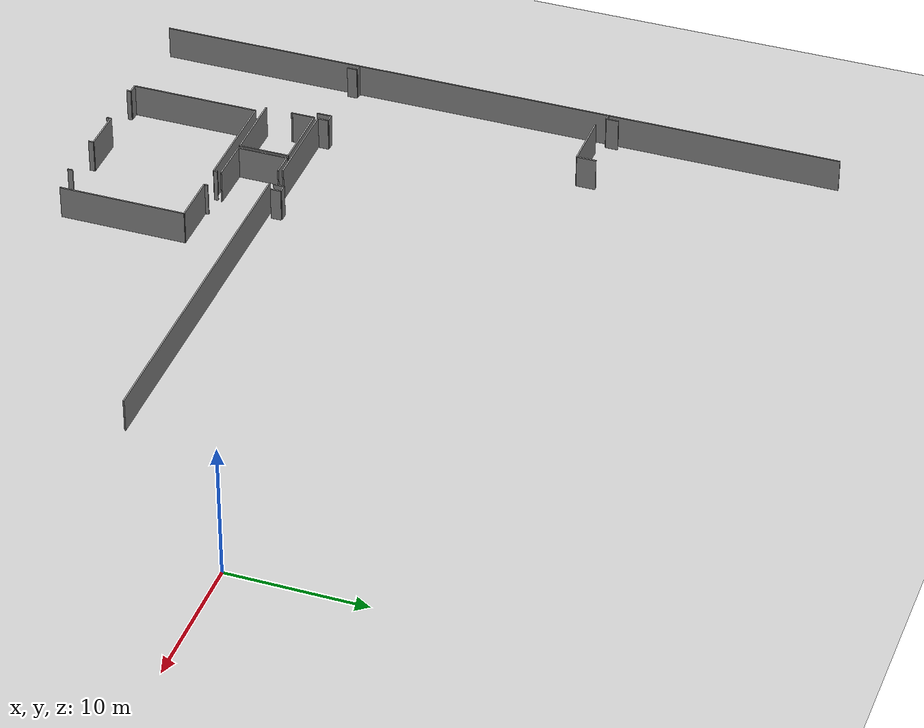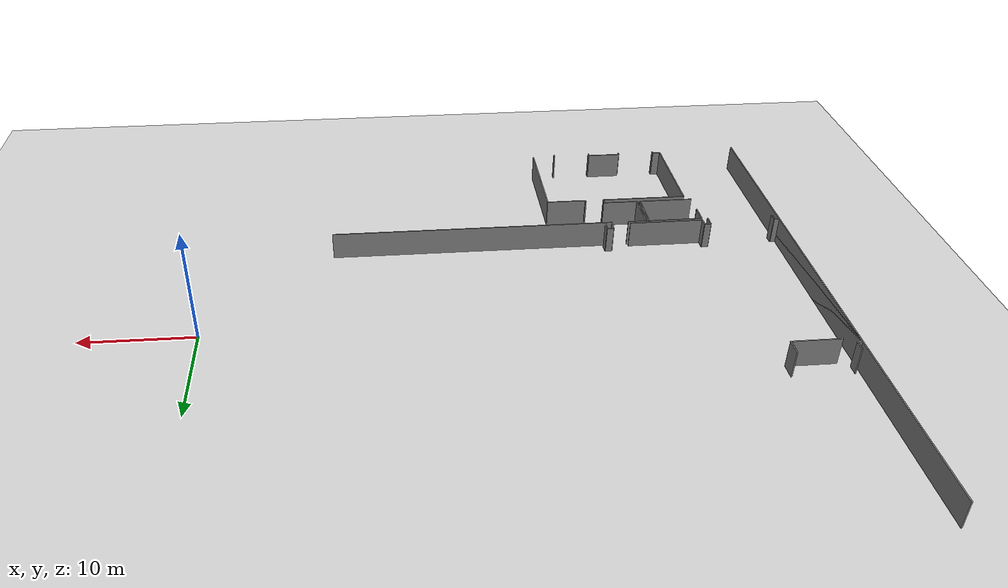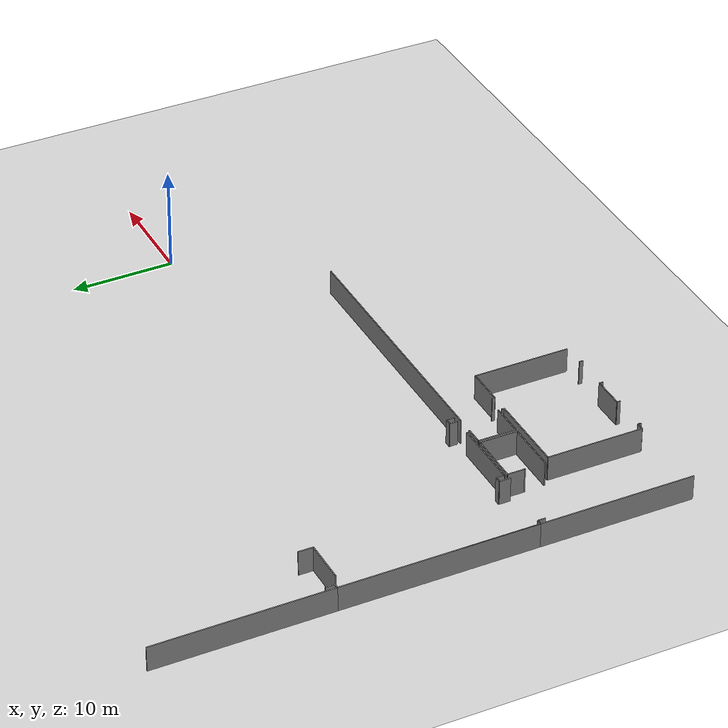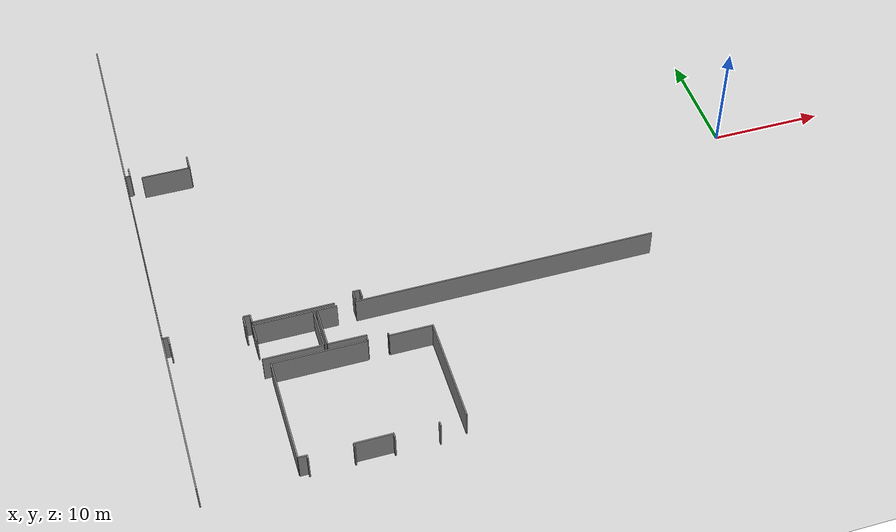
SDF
<sdf version="1.6">
 <world name="default">
  <model name="ground_plane">
   <static>1</static>
   <link name="link">
    <collision name="collision">
     <geometry><plane><normal>0 0 1</normal><size>100 100</size></plane></geometry>
     <surface><friction><ode><mu>100</mu><mu2>50</mu2></ode></friction></surface>
    </collision>
    <visual name="visual">
     <cast_shadows>0</cast_shadows>
     <geometry><plane><normal>0 0 1</normal><size>100 100</size></plane></geometry>
     <material>
      <script><uri>file://media/materials/scripts/gazebo.material</uri><name>Gazebo/Grey</name></script>
     </material>
    </visual>
   </link>
  </model>
  <model name="50045367">
   <static>1</static>
   <link name="Wall_85">
    <collision name="Wall_85_Collision">
     <geometry><box><size>19.0715991666 0.1 2.5</size></box></geometry>
     <pose>9.53579958331 0 1.25 0 0 0</pose>
    </collision>
    <visual name="Wall_85_Visual">
     <pose>9.53579958331 0 1.25 0 0 0</pose>
     <geometry><box><size>19.0715991666 0.1 2.5</size></box></geometry>
     <material>
      <script><uri>file://media/materials/scripts/gazebo.material</uri><name>Gazebo/Grey</name></script>
      <ambient>1 1 1 1</ambient>
     </material>
    </visual>
    <pose>0.0 -36.2678489761 0 0 0 1.57079632679</pose>
   </link>
   <link name="Wall_86">
    <collision name="Wall_86_Collision">
     <geometry><box><size>0.442095634941 0.1 2.5</size></box></geometry>
     <pose>0.22104781747 0 1.25 0 0 0</pose>
    </collision>
    <visual name="Wall_86_Visual">
     <pose>0.22104781747 0 1.25 0 0 0</pose>
     <geometry><box><size>0.442095634941 0.1 2.5</size></box></geometry>
     <material>
      <script><uri>file://media/materials/scripts/gazebo.material</uri><name>Gazebo/Grey</name></script>
      <ambient>1 1 1 1</ambient>
     </material>
    </visual>
    <pose>0.0 -17.1962498094 0 0 0 0.0</pose>
   </link>
   <link name="Wall_87">
    <collision name="Wall_87_Collision">
     <geometry><box><size>0.907947558311 0.1 2.5</size></box></geometry>
     <pose>0.453973779155 0 1.25 0 0 0</pose>
    </collision>
    <visual name="Wall_87_Visual">
     <pose>0.453973779155 0 1.25 0 0 0</pose>
     <geometry><box><size>0.907947558311 0.1 2.5</size></box></geometry>
     <material>
      <script><uri>file://media/materials/scripts/gazebo.material</uri><name>Gazebo/Grey</name></script>
      <ambient>1 1 1 1</ambient>
     </material>
    </visual>
    <pose>0.442095634941 -17.1962498094 0 0 0 1.57079632679</pose>
   </link>
   <link name="Wall_90">
    <collision name="Wall_90_Collision">
     <geometry><box><size>4.26546064333 0.1 2.5</size></box></geometry>
     <pose>2.13273032166 0 1.25 0 0 0</pose>
    </collision>
    <visual name="Wall_90_Visual">
     <pose>2.13273032166 0 1.25 0 0 0</pose>
     <geometry><box><size>4.26546064333 0.1 2.5</size></box></geometry>
     <material>
      <script><uri>file://media/materials/scripts/gazebo.material</uri><name>Gazebo/Grey</name></script>
      <ambient>1 1 1 1</ambient>
     </material>
    </visual>
    <pose>1.40085878347 -17.7152040246 0 0 0 0.0</pose>
   </link>
   <link name="Wall_91">
    <collision name="Wall_91_Collision">
     <geometry><box><size>1.43363483917 0.1 2.5</size></box></geometry>
     <pose>0.716817419584 0 1.25 0 0 0</pose>
    </collision>
    <visual name="Wall_91_Visual">
     <pose>0.716817419584 0 1.25 0 0 0</pose>
     <geometry><box><size>1.43363483917 0.1 2.5</size></box></geometry>
     <material>
      <script><uri>file://media/materials/scripts/gazebo.material</uri><name>Gazebo/Grey</name></script>
      <ambient>1 1 1 1</ambient>
     </material>
    </visual>
    <pose>5.6663194268 -17.7152040246 0 0 0 1.57079632679</pose>
   </link>
   <link name="Wall_117">
    <collision name="Wall_117_Collision">
     <geometry><box><size>0.776462218609 0.1 2.5</size></box></geometry>
     <pose>0.388231109304 0 1.25 0 0 0</pose>
    </collision>
    <visual name="Wall_117_Visual">
     <pose>0.388231109304 0 1.25 0 0 0</pose>
     <geometry><box><size>0.776462218609 0.1 2.5</size></box></geometry>
     <material>
      <script><uri>file://media/materials/scripts/gazebo.material</uri><name>Gazebo/Grey</name></script>
      <ambient>1 1 1 1</ambient>
     </material>
    </visual>
    <pose>16.559276386 -36.7162965598 0 0 0 1.57079632679</pose>
   </link>
   <link name="Wall_118">
    <collision name="Wall_118_Collision">
     <geometry><box><size>0.603181055948 0.1 2.5</size></box></geometry>
     <pose>0.301590527974 0 1.25 0 0 0</pose>
    </collision>
    <visual name="Wall_118_Visual">
     <pose>0.301590527974 0 1.25 0 0 0</pose>
     <geometry><box><size>0.603181055948 0.1 2.5</size></box></geometry>
     <material>
      <script><uri>file://media/materials/scripts/gazebo.material</uri><name>Gazebo/Grey</name></script>
      <ambient>1 1 1 1</ambient>
     </material>
    </visual>
    <pose>16.559276386 -35.9398343412 0 0 0 3.14159265359</pose>
   </link>
   <link name="Wall_119">
    <collision name="Wall_119_Collision">
     <geometry><box><size>0.770872503684 0.1 2.5</size></box></geometry>
     <pose>0.385436251842 0 1.25 0 0 0</pose>
    </collision>
    <visual name="Wall_119_Visual">
     <pose>0.385436251842 0 1.25 0 0 0</pose>
     <geometry><box><size>0.770872503684 0.1 2.5</size></box></geometry>
     <material>
      <script><uri>file://media/materials/scripts/gazebo.material</uri><name>Gazebo/Grey</name></script>
      <ambient>1 1 1 1</ambient>
     </material>
    </visual>
    <pose>15.95609533 -35.9398343412 0 0 0 -1.57079632679</pose>
   </link>
   <link name="Wall_120">
    <collision name="Wall_120_Collision">
     <geometry><box><size>6.8846232024 0.1 2.5</size></box></geometry>
     <pose>3.4423116012 0 1.25 0 0 0</pose>
    </collision>
    <visual name="Wall_120_Visual">
     <pose>3.4423116012 0 1.25 0 0 0</pose>
     <geometry><box><size>6.8846232024 0.1 2.5</size></box></geometry>
     <material>
      <script><uri>file://media/materials/scripts/gazebo.material</uri><name>Gazebo/Grey</name></script>
      <ambient>1 1 1 1</ambient>
     </material>
    </visual>
    <pose>14.1907617257 -36.7107068449 0 0 0 3.14159265359</pose>
   </link>
   <link name="Wall_121">
    <collision name="Wall_121_Collision">
     <geometry><box><size>0.789166116164 0.1 2.5</size></box></geometry>
     <pose>0.394583058082 0 1.25 0 0 0</pose>
    </collision>
    <visual name="Wall_121_Visual">
     <pose>0.394583058082 0 1.25 0 0 0</pose>
     <geometry><box><size>0.789166116164 0.1 2.5</size></box></geometry>
     <material>
      <script><uri>file://media/materials/scripts/gazebo.material</uri><name>Gazebo/Grey</name></script>
      <ambient>1 1 1 1</ambient>
     </material>
    </visual>
    <pose>7.3061385233 -36.7107068449 0 0 0 1.57079632679</pose>
   </link>
   <link name="Wall_122">
    <collision name="Wall_122_Collision">
     <geometry><box><size>0.588444534783 0.1 2.5</size></box></geometry>
     <pose>0.294222267392 0 1.25 0 0 0</pose>
    </collision>
    <visual name="Wall_122_Visual">
     <pose>0.294222267392 0 1.25 0 0 0</pose>
     <geometry><box><size>0.588444534783 0.1 2.5</size></box></geometry>
     <material>
      <script><uri>file://media/materials/scripts/gazebo.material</uri><name>Gazebo/Grey</name></script>
      <ambient>1 1 1 1</ambient>
     </material>
    </visual>
    <pose>7.3061385233 -35.9215407287 0 0 0 3.14159265359</pose>
   </link>
   <link name="Wall_123">
    <collision name="Wall_123_Collision">
     <geometry><box><size>1.08961329336 0.1 2.5</size></box></geometry>
     <pose>0.544806646679 0 1.25 0 0 0</pose>
    </collision>
    <visual name="Wall_123_Visual">
     <pose>0.544806646679 0 1.25 0 0 0</pose>
     <geometry><box><size>1.08961329336 0.1 2.5</size></box></geometry>
     <material>
      <script><uri>file://media/materials/scripts/gazebo.material</uri><name>Gazebo/Grey</name></script>
      <ambient>1 1 1 1</ambient>
     </material>
    </visual>
    <pose>6.71769398852 -35.9215407287 0 0 0 -1.57079632679</pose>
   </link>
   <link name="Wall_124">
    <collision name="Wall_124_Collision">
     <geometry><box><size>0.737842370039 0.1 2.5</size></box></geometry>
     <pose>0.36892118502 0 1.25 0 0 0</pose>
    </collision>
    <visual name="Wall_124_Visual">
     <pose>0.36892118502 0 1.25 0 0 0</pose>
     <geometry><box><size>0.737842370039 0.1 2.5</size></box></geometry>
     <material>
      <script><uri>file://media/materials/scripts/gazebo.material</uri><name>Gazebo/Grey</name></script>
      <ambient>1 1 1 1</ambient>
     </material>
    </visual>
    <pose>0.503582499111 -37.0111540221 0 0 0 1.57079632679</pose>
   </link>
   <link name="Wall_125">
    <collision name="Wall_125_Collision">
     <geometry><box><size>0.503612126779 0.1 2.5</size></box></geometry>
     <pose>0.25180606339 0 1.25 0 0 0</pose>
    </collision>
    <visual name="Wall_125_Visual">
     <pose>0.25180606339 0 1.25 0 0 0</pose>
     <geometry><box><size>0.503612126779 0.1 2.5</size></box></geometry>
     <material>
      <script><uri>file://media/materials/scripts/gazebo.material</uri><name>Gazebo/Grey</name></script>
      <ambient>1 1 1 1</ambient>
     </material>
    </visual>
    <pose>0.503582499111 -36.273311652 0 0 0 3.13074545039</pose>
   </link>
   <link name="Wall_135">
    <collision name="Wall_135_Collision">
     <geometry><box><size>1.62952893948 0.1 2.5</size></box></geometry>
     <pose>0.814764469739 0 1.25 0 0 0</pose>
    </collision>
    <visual name="Wall_135_Visual">
     <pose>0.814764469739 0 1.25 0 0 0</pose>
     <geometry><box><size>1.62952893948 0.1 2.5</size></box></geometry>
     <material>
      <script><uri>file://media/materials/scripts/gazebo.material</uri><name>Gazebo/Grey</name></script>
      <ambient>1 1 1 1</ambient>
     </material>
    </visual>
    <pose>7.28682859901 -38.643477819 0 0 0 1.57079632679</pose>
   </link>
   <link name="Wall_136">
    <collision name="Wall_136_Collision">
     <geometry><box><size>5.07025255348 0.1 2.5</size></box></geometry>
     <pose>2.53512627674 0 1.25 0 0 0</pose>
    </collision>
    <visual name="Wall_136_Visual">
     <pose>2.53512627674 0 1.25 0 0 0</pose>
     <geometry><box><size>5.07025255348 0.1 2.5</size></box></geometry>
     <material>
      <script><uri>file://media/materials/scripts/gazebo.material</uri><name>Gazebo/Grey</name></script>
      <ambient>1 1 1 1</ambient>
     </material>
    </visual>
    <pose>7.28682859901 -37.0139488795 0 0 0 0.0</pose>
   </link>
   <link name="Wall_137">
    <collision name="Wall_137_Collision">
     <geometry><box><size>3.690228162 0.1 2.5</size></box></geometry>
     <pose>1.845114081 0 1.25 0 0 0</pose>
    </collision>
    <visual name="Wall_137_Visual">
     <pose>1.845114081 0 1.25 0 0 0</pose>
     <geometry><box><size>3.690228162 0.1 2.5</size></box></geometry>
     <material>
      <script><uri>file://media/materials/scripts/gazebo.material</uri><name>Gazebo/Grey</name></script>
      <ambient>1 1 1 1</ambient>
     </material>
    </visual>
    <pose>12.3570811525 -37.0139488795 0 0 0 -1.57079632679</pose>
   </link>
   <link name="Wall_138">
    <collision name="Wall_138_Collision">
     <geometry><box><size>5.0800345546 0.1 2.5</size></box></geometry>
     <pose>2.5400172773 0 1.25 0 0 0</pose>
    </collision>
    <visual name="Wall_138_Visual">
     <pose>2.5400172773 0 1.25 0 0 0</pose>
     <geometry><box><size>5.0800345546 0.1 2.5</size></box></geometry>
     <material>
      <script><uri>file://media/materials/scripts/gazebo.material</uri><name>Gazebo/Grey</name></script>
      <ambient>1 1 1 1</ambient>
     </material>
    </visual>
    <pose>12.3570811525 -40.7041770415 0 0 0 3.14159265359</pose>
   </link>
   <link name="Wall_139">
    <collision name="Wall_139_Collision">
     <geometry><box><size>0.10969056001 0.1 2.5</size></box></geometry>
     <pose>0.054845280005 0 1.25 0 0 0</pose>
    </collision>
    <visual name="Wall_139_Visual">
     <pose>0.054845280005 0 1.25 0 0 0</pose>
     <geometry><box><size>0.10969056001 0.1 2.5</size></box></geometry>
     <material>
      <script><uri>file://media/materials/scripts/gazebo.material</uri><name>Gazebo/Grey</name></script>
      <ambient>1 1 1 1</ambient>
     </material>
    </visual>
    <pose>7.2770465979 -38.752731338 0 0 0 1.48149955084</pose>
   </link>
   <link name="Wall_301">
    <collision name="Wall_301_Collision">
     <geometry><box><size>9.40024899639 0.1 2.5</size></box></geometry>
     <pose>4.7001244982 0 1.25 0 0 0</pose>
    </collision>
    <visual name="Wall_301_Visual">
     <pose>4.7001244982 0 1.25 0 0 0</pose>
     <geometry><box><size>9.40024899639 0.1 2.5</size></box></geometry>
     <material>
      <script><uri>file://media/materials/scripts/gazebo.material</uri><name>Gazebo/Grey</name></script>
      <ambient>1 1 1 1</ambient>
     </material>
    </visual>
    <pose>7.86714263936 -50.6943950404 0 0 0 1.57079632679</pose>
   </link>
   <link name="Wall_302">
    <collision name="Wall_302_Collision">
     <geometry><box><size>7.96343818283 0.1 2.5</size></box></geometry>
     <pose>3.98171909142 0 1.25 0 0 0</pose>
    </collision>
    <visual name="Wall_302_Visual">
     <pose>3.98171909142 0 1.25 0 0 0</pose>
     <geometry><box><size>7.96343818283 0.1 2.5</size></box></geometry>
     <material>
      <script><uri>file://media/materials/scripts/gazebo.material</uri><name>Gazebo/Grey</name></script>
      <ambient>1 1 1 1</ambient>
     </material>
    </visual>
    <pose>7.86714263936 -41.294146044 0 0 0 0.0</pose>
   </link>
   <link name="Wall_303">
    <collision name="Wall_303_Collision">
     <geometry><box><size>0.277072005691 0.1 2.5</size></box></geometry>
     <pose>0.138536002846 0 1.25 0 0 0</pose>
    </collision>
    <visual name="Wall_303_Visual">
     <pose>0.138536002846 0 1.25 0 0 0</pose>
     <geometry><box><size>0.277072005691 0.1 2.5</size></box></geometry>
     <material>
      <script><uri>file://media/materials/scripts/gazebo.material</uri><name>Gazebo/Grey</name></script>
      <ambient>1 1 1 1</ambient>
     </material>
    </visual>
    <pose>15.8305808222 -41.294146044 0 0 0 1.57079632679</pose>
   </link>
   <link name="Wall_304">
    <collision name="Wall_304_Collision">
     <geometry><box><size>0.278596473398 0.1 2.5</size></box></geometry>
     <pose>0.139298236699 0 1.25 0 0 0</pose>
    </collision>
    <visual name="Wall_304_Visual">
     <pose>0.139298236699 0 1.25 0 0 0</pose>
     <geometry><box><size>0.278596473398 0.1 2.5</size></box></geometry>
     <material>
      <script><uri>file://media/materials/scripts/gazebo.material</uri><name>Gazebo/Grey</name></script>
      <ambient>1 1 1 1</ambient>
     </material>
    </visual>
    <pose>17.6076020123 -41.0170740383 0 0 0 -1.57079632679</pose>
   </link>
   <link name="Wall_305">
    <collision name="Wall_305_Collision">
     <geometry><box><size>3.69962904619 0.1 2.5</size></box></geometry>
     <pose>1.8498145231 0 1.25 0 0 0</pose>
    </collision>
    <visual name="Wall_305_Visual">
     <pose>1.8498145231 0 1.25 0 0 0</pose>
     <geometry><box><size>3.69962904619 0.1 2.5</size></box></geometry>
     <material>
      <script><uri>file://media/materials/scripts/gazebo.material</uri><name>Gazebo/Grey</name></script>
      <ambient>1 1 1 1</ambient>
     </material>
    </visual>
    <pose>17.6076020123 -41.2956705117 0 0 0 0.0</pose>
   </link>
   <link name="Wall_306">
    <collision name="Wall_306_Collision">
     <geometry><box><size>9.39046699527 0.1 2.5</size></box></geometry>
     <pose>4.69523349764 0 1.25 0 0 0</pose>
    </collision>
    <visual name="Wall_306_Visual">
     <pose>4.69523349764 0 1.25 0 0 0</pose>
     <geometry><box><size>9.39046699527 0.1 2.5</size></box></geometry>
     <material>
      <script><uri>file://media/materials/scripts/gazebo.material</uri><name>Gazebo/Grey</name></script>
      <ambient>1 1 1 1</ambient>
     </material>
    </visual>
    <pose>21.3072310585 -41.2956705117 0 0 0 -1.57079632679</pose>
   </link>
   <link name="Wall_308">
    <collision name="Wall_308_Collision">
     <geometry><box><size>0.3757812897 0.1 2.5</size></box></geometry>
     <pose>0.18789064485 0 1.25 0 0 0</pose>
    </collision>
    <visual name="Wall_308_Visual">
     <pose>0.18789064485 0 1.25 0 0 0</pose>
     <geometry><box><size>0.3757812897 0.1 2.5</size></box></geometry>
     <material>
      <script><uri>file://media/materials/scripts/gazebo.material</uri><name>Gazebo/Grey</name></script>
      <ambient>1 1 1 1</ambient>
     </material>
    </visual>
    <pose>19.085319376 -50.686137507 0 0 0 -1.57079632679</pose>
   </link>
   <link name="Wall_309">
    <collision name="Wall_309_Collision">
     <geometry><box><size>0.376670562529 0.1 2.5</size></box></geometry>
     <pose>0.188335281264 0 1.25 0 0 0</pose>
    </collision>
    <visual name="Wall_309_Visual">
     <pose>0.188335281264 0 1.25 0 0 0</pose>
     <geometry><box><size>0.376670562529 0.1 2.5</size></box></geometry>
     <material>
      <script><uri>file://media/materials/scripts/gazebo.material</uri><name>Gazebo/Grey</name></script>
      <ambient>1 1 1 1</ambient>
     </material>
    </visual>
    <pose>15.4292646984 -51.0619187967 0 0 0 1.57079632679</pose>
   </link>
   <link name="Wall_310">
    <collision name="Wall_310_Collision">
     <geometry><box><size>3.16873316734 0.1 2.5</size></box></geometry>
     <pose>1.58436658367 0 1.25 0 0 0</pose>
    </collision>
    <visual name="Wall_310_Visual">
     <pose>1.58436658367 0 1.25 0 0 0</pose>
     <geometry><box><size>3.16873316734 0.1 2.5</size></box></geometry>
     <material>
      <script><uri>file://media/materials/scripts/gazebo.material</uri><name>Gazebo/Grey</name></script>
      <ambient>1 1 1 1</ambient>
     </material>
    </visual>
    <pose>15.4292646984 -50.6852482342 0 0 0 3.14159265359</pose>
   </link>
   <link name="Wall_311">
    <collision name="Wall_311_Collision">
     <geometry><box><size>0.332333960059 0.1 2.5</size></box></geometry>
     <pose>0.166166980029 0 1.25 0 0 0</pose>
    </collision>
    <visual name="Wall_311_Visual">
     <pose>0.166166980029 0 1.25 0 0 0</pose>
     <geometry><box><size>0.332333960059 0.1 2.5</size></box></geometry>
     <material>
      <script><uri>file://media/materials/scripts/gazebo.material</uri><name>Gazebo/Grey</name></script>
      <ambient>1 1 1 1</ambient>
     </material>
    </visual>
    <pose>12.2605315311 -50.6852482342 0 0 0 -1.57079632679</pose>
   </link>
   <link name="Wall_312">
    <collision name="Wall_312_Collision">
     <geometry><box><size>0.312515879872 0.1 2.5</size></box></geometry>
     <pose>0.156257939936 0 1.25 0 0 0</pose>
    </collision>
    <visual name="Wall_312_Visual">
     <pose>0.156257939936 0 1.25 0 0 0</pose>
     <geometry><box><size>0.312515879872 0.1 2.5</size></box></geometry>
     <material>
      <script><uri>file://media/materials/scripts/gazebo.material</uri><name>Gazebo/Grey</name></script>
      <ambient>1 1 1 1</ambient>
     </material>
    </visual>
    <pose>8.59914121653 -51.0175821942 0 0 0 1.57079632679</pose>
   </link>
   <link name="Wall_313">
    <collision name="Wall_313_Collision">
     <geometry><box><size>0.732076357395 0.1 2.5</size></box></geometry>
     <pose>0.366038178698 0 1.25 0 0 0</pose>
    </collision>
    <visual name="Wall_313_Visual">
     <pose>0.366038178698 0 1.25 0 0 0</pose>
     <geometry><box><size>0.732076357395 0.1 2.5</size></box></geometry>
     <material>
      <script><uri>file://media/materials/scripts/gazebo.material</uri><name>Gazebo/Grey</name></script>
      <ambient>1 1 1 1</ambient>
     </material>
    </visual>
    <pose>8.59914121653 -50.7050663143 0 0 0 3.12701541478</pose>
   </link>
   <link name="Wall_466">
    <collision name="Wall_466_Collision">
     <geometry><box><size>3.68120839474 0.1 2.5</size></box></geometry>
     <pose>1.84060419737 0 1.25 0 0 0</pose>
    </collision>
    <visual name="Wall_466_Visual">
     <pose>1.84060419737 0 1.25 0 0 0</pose>
     <geometry><box><size>3.68120839474 0.1 2.5</size></box></geometry>
     <material>
      <script><uri>file://media/materials/scripts/gazebo.material</uri><name>Gazebo/Grey</name></script>
      <ambient>1 1 1 1</ambient>
     </material>
    </visual>
    <pose>12.640378068 -40.701509223 0 0 0 1.57079632679</pose>
   </link>
   <link name="Wall_467">
    <collision name="Wall_467_Collision">
     <geometry><box><size>1.69520808984 0.1 2.5</size></box></geometry>
     <pose>0.847604044921 0 1.25 0 0 0</pose>
    </collision>
    <visual name="Wall_467_Visual">
     <pose>0.847604044921 0 1.25 0 0 0</pose>
     <geometry><box><size>1.69520808984 0.1 2.5</size></box></geometry>
     <material>
      <script><uri>file://media/materials/scripts/gazebo.material</uri><name>Gazebo/Grey</name></script>
      <ambient>1 1 1 1</ambient>
     </material>
    </visual>
    <pose>12.640378068 -37.0203008283 0 0 0 0.0</pose>
   </link>
   <link name="Wall_468">
    <collision name="Wall_468_Collision">
     <geometry><box><size>26.1519894304 0.1 2.5</size></box></geometry>
     <pose>13.0759947152 0 1.25 0 0 0</pose>
    </collision>
    <visual name="Wall_468_Visual">
     <pose>13.0759947152 0 1.25 0 0 0</pose>
     <geometry><box><size>26.1519894304 0.1 2.5</size></box></geometry>
     <material>
      <script><uri>file://media/materials/scripts/gazebo.material</uri><name>Gazebo/Grey</name></script>
      <ambient>1 1 1 1</ambient>
     </material>
    </visual>
    <pose>15.8873672443 -37.0203008283 0 0 0 0.0</pose>
   </link>
   <link name="Wall_491">
    <collision name="Wall_491_Collision">
     <geometry><box><size>3.27449832347 0.1 2.5</size></box></geometry>
     <pose>1.63724916174 0 1.25 0 0 0</pose>
    </collision>
    <visual name="Wall_491_Visual">
     <pose>1.63724916174 0 1.25 0 0 0</pose>
     <geometry><box><size>3.27449832347 0.1 2.5</size></box></geometry>
     <material>
      <script><uri>file://media/materials/scripts/gazebo.material</uri><name>Gazebo/Grey</name></script>
      <ambient>1 1 1 1</ambient>
     </material>
    </visual>
    <pose>15.914807663 -40.7227247319 0 0 0 3.13511359779</pose>
   </link>
   <link name="Wall_500">
    <collision name="Wall_500_Collision">
     <geometry><box><size>51.2693734438 0.1 2.5</size></box></geometry>
     <pose>25.6346867219 0 1.25 0 0 0</pose>
    </collision>
    <visual name="Wall_500_Visual">
     <pose>25.6346867219 0 1.25 0 0 0</pose>
     <geometry><box><size>51.2693734438 0.1 2.5</size></box></geometry>
     <material>
      <script><uri>file://media/materials/scripts/gazebo.material</uri><name>Gazebo/Grey</name></script>
      <ambient>1 1 1 1</ambient>
     </material>
    </visual>
    <pose>0.0 -51.2693734438 0 0 0 1.57079632679</pose>
   </link>
   <pose>-53.2 25.6193734438 0 0 0 0</pose>
  </model>
 </world>
</sdf>
